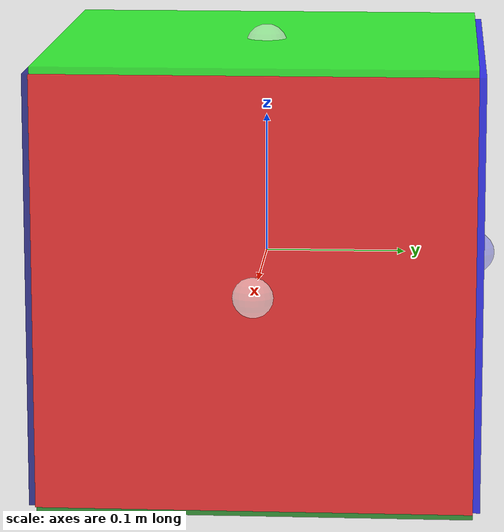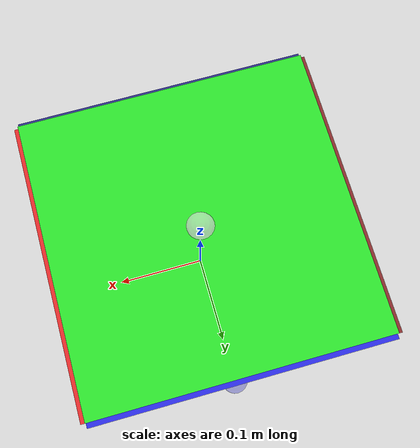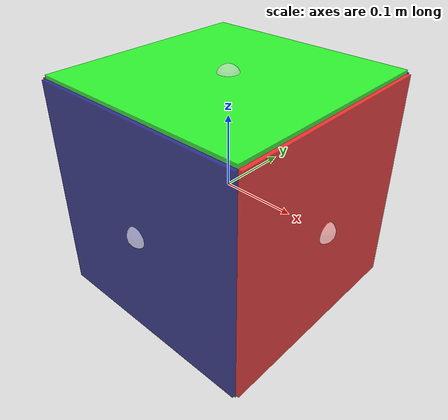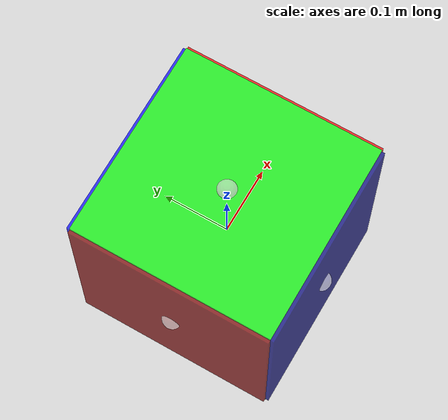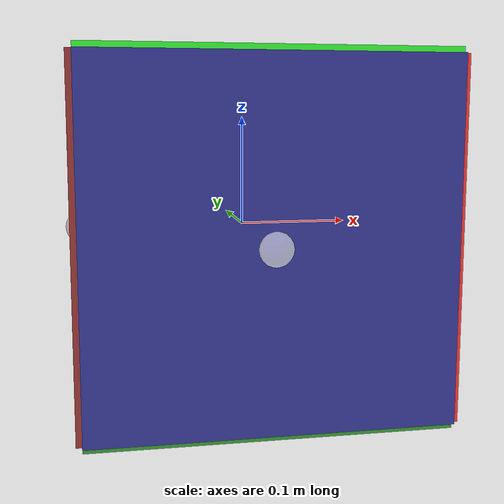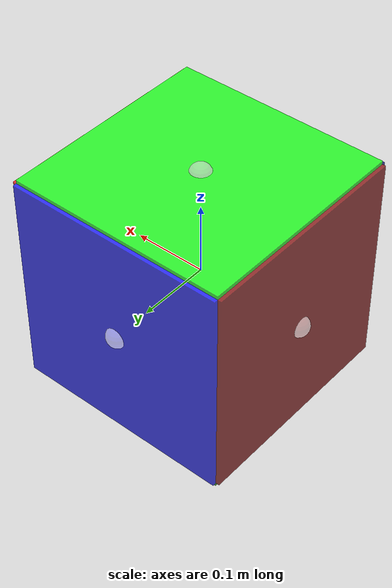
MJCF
<mujoco model="satellite_3d">
  <compiler angle="degree" coordinate="local" inertiafromgeom="true"/>
  <option integrator="RK4" timestep="0.005" gravity="0 0 0"/>

  <visual>
    <global offwidth="2560" offheight="1440"/>
  </visual>

  <default>
    <joint armature="0" damping="0" limited="false"/>
    <geom conaffinity="0" condim="3" density="500" friction="1 0.5 0.5" margin="0" material="geom"/>
    <site type="sphere" size="0.015" rgba="0.5 0.5 0.5 0.3"/>
  </default>

  <asset>
    <!-- Starfield-ish background (Dark) -->
    <texture type="skybox" builtin="flat" rgb1="0.02 0.02 0.04" rgb2="0.05 0.05 0.08" width="512" height="512"/>

    <material name="geom" rgba="0.5 0.5 0.5 1"/>
  </asset>

  <worldbody>
    <light cutoff="100" diffuse="1 1 1" dir="-0 0 -1.3" directional="true" exponent="1" pos="0 0 1.3" specular="0.1 0.1 0.1"/>

    <!-- Camera -->
    <camera name="overhead_cam" pos="0 0 4" mode="fixed" xyaxes="1 0 0 0 1 0"/>

    <body name="satellite" pos="0 0 0">
      <joint name="root" type="free"/>

      <!--
        Cubic Body: 30x30x30 cm
        Mujoco box size is half-extent: 0.15 0.15 0.15
        Alpha set to 0.75 (25% Translucent)
      -->

      <!-- Core Grey Body (slightly smaller to show colored plates) -->
      <geom name="core" type="box" size="0.145 0.145 0.145" rgba="0.2 0.2 0.2 0.75" mass="12"/>

      <!-- Colored Plates for Faces -->
      <!-- +X (Red) -->
      <geom name="face_px" type="box" pos="0.15 0 0" size="0.005 0.15 0.15" rgba="1 0 0 0.75"/>
      <!-- -X (Dark Red) -->
      <geom name="face_nx" type="box" pos="-0.15 0 0" size="0.005 0.15 0.15" rgba="0.5 0 0 0.75"/>

      <!-- +Y (Blue) -->
      <geom name="face_py" type="box" pos="0 0.15 0" size="0.15 0.005 0.15" rgba="0 0 1 0.75"/>
      <!-- -Y (Dark Blue) -->
      <geom name="face_ny" type="box" pos="0 -0.15 0" size="0.15 0.005 0.15" rgba="0 0 0.5 0.75"/>

      <!-- +Z (Green) -->
      <geom name="face_pz" type="box" pos="0 0 0.15" size="0.15 0.15 0.005" rgba="0 1 0 0.75"/>
      <!-- -Z (Dark Green) -->
      <geom name="face_nz" type="box" pos="0 0 -0.15" size="0.15 0.15 0.005" rgba="0 0.5 0 0.75"/>

      <site name="thruster1" pos="0.15 0 0"   rgba="1 0 0 0.3"/>
      <site name="thruster2" pos="-0.15 0 0"  rgba="0.5 0 0 0.3"/>

      <site name="thruster3" pos="0 0.15 0"   rgba="0 0 1 0.3"/>
      <site name="thruster4" pos="0 -0.15 0"  rgba="0 0 0.5 0.3"/>

      <site name="thruster5" pos="0 0 0.15"   rgba="0 1 0 0.3"/>
      <site name="thruster6" pos="0 0 -0.15"  rgba="0 0.5 0 0.3"/>

    </body>
  </worldbody>
</mujoco>
